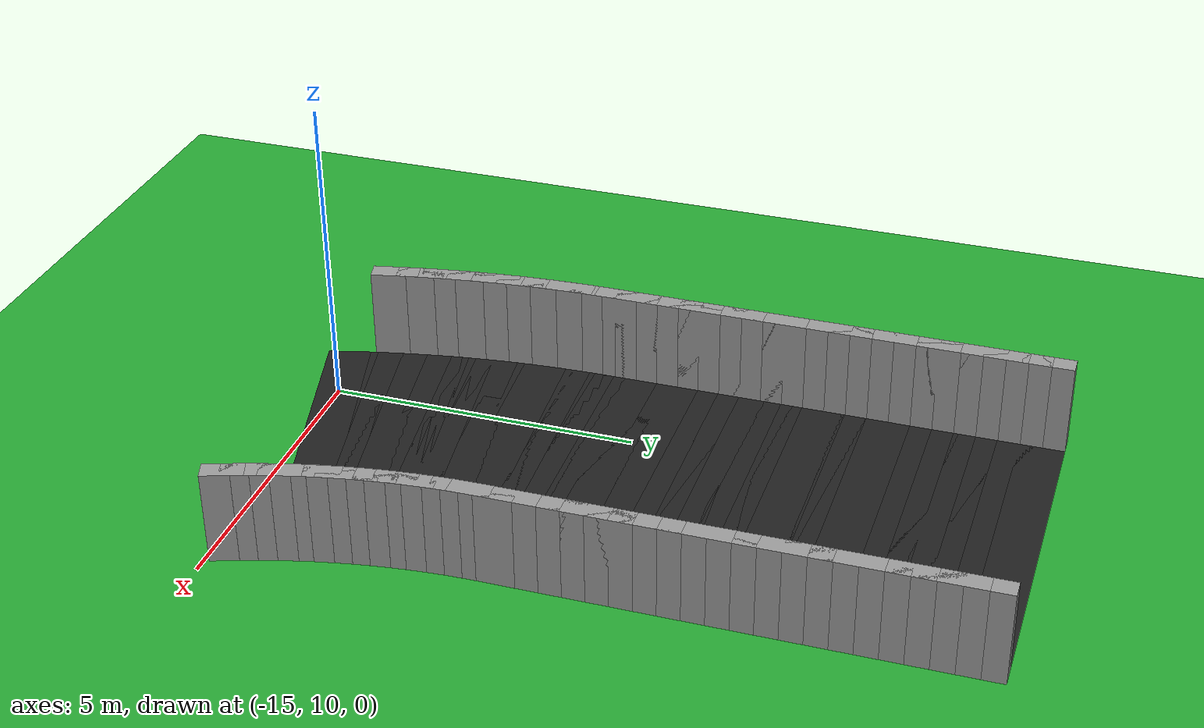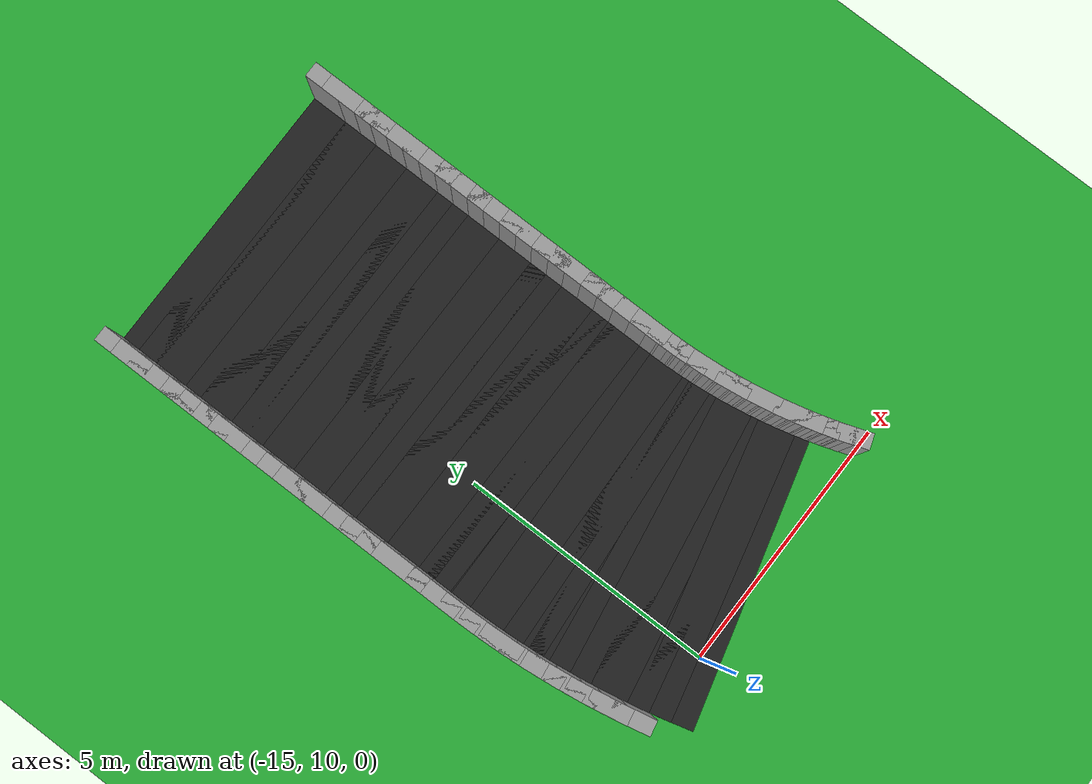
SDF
<sdf version="1.6">
 <world name="loop_speedloop">
  <include><uri>model://sun</uri></include>
  <model name="ground_plane">
   <static>true</static>
   <link name="link">
    <collision name="collision">
     <surface><friction><ode><mu>100</mu><mu2>50</mu2></ode></friction></surface>
     <geometry><plane><normal>0 0 1</normal><size>120 120</size></plane></geometry>
    </collision>
    <visual name="visual">
     <geometry><plane><normal>0 0 1</normal><size>120 120</size></plane></geometry>
     <material>
      <script><uri>file://media/materials/scripts/gazebo.material</uri><name>Gazebo/Green</name></script>
     </material>
    </visual>
   </link>
  </model>
  <model name="asphalt_436">
   <static>true</static>
   <pose>-14.000 21.193 0.005 0 0 -1.57080</pose>
   <link name="link">
    <visual name="visual">
     <geometry><box><size>0.711 5.500 0.010</size></box></geometry>
     <material>
      <script><uri>file://media/materials/scripts/gazebo.material</uri><name>Gazebo/Black</name></script>
     </material>
    </visual>
   </link>
  </model>
  <model name="curbL_436">
   <static>true</static>
   <pose>-11.100 21.193 0.750 0 0 -1.57080</pose>
   <link name="link">
    <collision name="collision"><geometry><box><size>0.711 0.300 1.500</size></box></geometry></collision>
    <visual name="visual">
     <geometry><box><size>0.711 0.300 1.500</size></box></geometry>
     <material>
      <script><uri>file://media/materials/scripts/gazebo.material</uri><name>Gazebo/Grey</name></script>
     </material>
    </visual>
   </link>
  </model>
  <model name="curbR_436">
   <static>true</static>
   <pose>-16.900 21.193 0.750 0 0 -1.57080</pose>
   <link name="link">
    <collision name="collision"><geometry><box><size>0.711 0.300 1.500</size></box></geometry></collision>
    <visual name="visual">
     <geometry><box><size>0.711 0.300 1.500</size></box></geometry>
     <material>
      <script><uri>file://media/materials/scripts/gazebo.material</uri><name>Gazebo/Grey</name></script>
     </material>
    </visual>
   </link>
  </model>
  <model name="asphalt_437">
   <static>true</static>
   <pose>-14.000 20.842 0.005 0 0 -1.57080</pose>
   <link name="link">
    <visual name="visual">
     <geometry><box><size>0.711 5.500 0.010</size></box></geometry>
     <material>
      <script><uri>file://media/materials/scripts/gazebo.material</uri><name>Gazebo/Black</name></script>
     </material>
    </visual>
   </link>
  </model>
  <model name="curbL_437">
   <static>true</static>
   <pose>-11.100 20.842 0.750 0 0 -1.57080</pose>
   <link name="link">
    <collision name="collision"><geometry><box><size>0.711 0.300 1.500</size></box></geometry></collision>
    <visual name="visual">
     <geometry><box><size>0.711 0.300 1.500</size></box></geometry>
     <material>
      <script><uri>file://media/materials/scripts/gazebo.material</uri><name>Gazebo/Grey</name></script>
     </material>
    </visual>
   </link>
  </model>
  <model name="curbR_437">
   <static>true</static>
   <pose>-16.900 20.842 0.750 0 0 -1.57080</pose>
   <link name="link">
    <collision name="collision"><geometry><box><size>0.711 0.300 1.500</size></box></geometry></collision>
    <visual name="visual">
     <geometry><box><size>0.711 0.300 1.500</size></box></geometry>
     <material>
      <script><uri>file://media/materials/scripts/gazebo.material</uri><name>Gazebo/Grey</name></script>
     </material>
    </visual>
   </link>
  </model>
  <model name="asphalt_438">
   <static>true</static>
   <pose>-14.000 20.492 0.005 0 0 -1.57080</pose>
   <link name="link">
    <visual name="visual">
     <geometry><box><size>0.711 5.500 0.010</size></box></geometry>
     <material>
      <script><uri>file://media/materials/scripts/gazebo.material</uri><name>Gazebo/Black</name></script>
     </material>
    </visual>
   </link>
  </model>
  <model name="curbL_438">
   <static>true</static>
   <pose>-11.100 20.492 0.750 0 0 -1.57080</pose>
   <link name="link">
    <collision name="collision"><geometry><box><size>0.711 0.300 1.500</size></box></geometry></collision>
    <visual name="visual">
     <geometry><box><size>0.711 0.300 1.500</size></box></geometry>
     <material>
      <script><uri>file://media/materials/scripts/gazebo.material</uri><name>Gazebo/Grey</name></script>
     </material>
    </visual>
   </link>
  </model>
  <model name="curbR_438">
   <static>true</static>
   <pose>-16.900 20.492 0.750 0 0 -1.57080</pose>
   <link name="link">
    <collision name="collision"><geometry><box><size>0.711 0.300 1.500</size></box></geometry></collision>
    <visual name="visual">
     <geometry><box><size>0.711 0.300 1.500</size></box></geometry>
     <material>
      <script><uri>file://media/materials/scripts/gazebo.material</uri><name>Gazebo/Grey</name></script>
     </material>
    </visual>
   </link>
  </model>
  <model name="asphalt_439">
   <static>true</static>
   <pose>-14.000 20.141 0.005 0 0 -1.57080</pose>
   <link name="link">
    <visual name="visual">
     <geometry><box><size>0.711 5.500 0.010</size></box></geometry>
     <material>
      <script><uri>file://media/materials/scripts/gazebo.material</uri><name>Gazebo/Black</name></script>
     </material>
    </visual>
   </link>
  </model>
  <model name="curbL_439">
   <static>true</static>
   <pose>-11.100 20.141 0.750 0 0 -1.57080</pose>
   <link name="link">
    <collision name="collision"><geometry><box><size>0.711 0.300 1.500</size></box></geometry></collision>
    <visual name="visual">
     <geometry><box><size>0.711 0.300 1.500</size></box></geometry>
     <material>
      <script><uri>file://media/materials/scripts/gazebo.material</uri><name>Gazebo/Grey</name></script>
     </material>
    </visual>
   </link>
  </model>
  <model name="curbR_439">
   <static>true</static>
   <pose>-16.900 20.141 0.750 0 0 -1.57080</pose>
   <link name="link">
    <collision name="collision"><geometry><box><size>0.711 0.300 1.500</size></box></geometry></collision>
    <visual name="visual">
     <geometry><box><size>0.711 0.300 1.500</size></box></geometry>
     <material>
      <script><uri>file://media/materials/scripts/gazebo.material</uri><name>Gazebo/Grey</name></script>
     </material>
    </visual>
   </link>
  </model>
  <model name="asphalt_440">
   <static>true</static>
   <pose>-14.000 19.790 0.005 0 0 -1.57080</pose>
   <link name="link">
    <visual name="visual">
     <geometry><box><size>0.711 5.500 0.010</size></box></geometry>
     <material>
      <script><uri>file://media/materials/scripts/gazebo.material</uri><name>Gazebo/Black</name></script>
     </material>
    </visual>
   </link>
  </model>
  <model name="curbL_440">
   <static>true</static>
   <pose>-11.100 19.790 0.750 0 0 -1.57080</pose>
   <link name="link">
    <collision name="collision"><geometry><box><size>0.711 0.300 1.500</size></box></geometry></collision>
    <visual name="visual">
     <geometry><box><size>0.711 0.300 1.500</size></box></geometry>
     <material>
      <script><uri>file://media/materials/scripts/gazebo.material</uri><name>Gazebo/Grey</name></script>
     </material>
    </visual>
   </link>
  </model>
  <model name="curbR_440">
   <static>true</static>
   <pose>-16.900 19.790 0.750 0 0 -1.57080</pose>
   <link name="link">
    <collision name="collision"><geometry><box><size>0.711 0.300 1.500</size></box></geometry></collision>
    <visual name="visual">
     <geometry><box><size>0.711 0.300 1.500</size></box></geometry>
     <material>
      <script><uri>file://media/materials/scripts/gazebo.material</uri><name>Gazebo/Grey</name></script>
     </material>
    </visual>
   </link>
  </model>
  <model name="asphalt_441">
   <static>true</static>
   <pose>-14.000 19.439 0.005 0 0 -1.57080</pose>
   <link name="link">
    <visual name="visual">
     <geometry><box><size>0.711 5.500 0.010</size></box></geometry>
     <material>
      <script><uri>file://media/materials/scripts/gazebo.material</uri><name>Gazebo/Black</name></script>
     </material>
    </visual>
   </link>
  </model>
  <model name="curbL_441">
   <static>true</static>
   <pose>-11.100 19.439 0.750 0 0 -1.57080</pose>
   <link name="link">
    <collision name="collision"><geometry><box><size>0.711 0.300 1.500</size></box></geometry></collision>
    <visual name="visual">
     <geometry><box><size>0.711 0.300 1.500</size></box></geometry>
     <material>
      <script><uri>file://media/materials/scripts/gazebo.material</uri><name>Gazebo/Grey</name></script>
     </material>
    </visual>
   </link>
  </model>
  <model name="curbR_441">
   <static>true</static>
   <pose>-16.900 19.439 0.750 0 0 -1.57080</pose>
   <link name="link">
    <collision name="collision"><geometry><box><size>0.711 0.300 1.500</size></box></geometry></collision>
    <visual name="visual">
     <geometry><box><size>0.711 0.300 1.500</size></box></geometry>
     <material>
      <script><uri>file://media/materials/scripts/gazebo.material</uri><name>Gazebo/Grey</name></script>
     </material>
    </visual>
   </link>
  </model>
  <model name="asphalt_442">
   <static>true</static>
   <pose>-14.000 19.088 0.005 0 0 -1.57080</pose>
   <link name="link">
    <visual name="visual">
     <geometry><box><size>0.711 5.500 0.010</size></box></geometry>
     <material>
      <script><uri>file://media/materials/scripts/gazebo.material</uri><name>Gazebo/Black</name></script>
     </material>
    </visual>
   </link>
  </model>
  <model name="curbL_442">
   <static>true</static>
   <pose>-11.100 19.088 0.750 0 0 -1.57080</pose>
   <link name="link">
    <collision name="collision"><geometry><box><size>0.711 0.300 1.500</size></box></geometry></collision>
    <visual name="visual">
     <geometry><box><size>0.711 0.300 1.500</size></box></geometry>
     <material>
      <script><uri>file://media/materials/scripts/gazebo.material</uri><name>Gazebo/Grey</name></script>
     </material>
    </visual>
   </link>
  </model>
  <model name="curbR_442">
   <static>true</static>
   <pose>-16.900 19.088 0.750 0 0 -1.57080</pose>
   <link name="link">
    <collision name="collision"><geometry><box><size>0.711 0.300 1.500</size></box></geometry></collision>
    <visual name="visual">
     <geometry><box><size>0.711 0.300 1.500</size></box></geometry>
     <material>
      <script><uri>file://media/materials/scripts/gazebo.material</uri><name>Gazebo/Grey</name></script>
     </material>
    </visual>
   </link>
  </model>
  <model name="asphalt_443">
   <static>true</static>
   <pose>-14.000 18.737 0.005 0 0 -1.57080</pose>
   <link name="link">
    <visual name="visual">
     <geometry><box><size>0.711 5.500 0.010</size></box></geometry>
     <material>
      <script><uri>file://media/materials/scripts/gazebo.material</uri><name>Gazebo/Black</name></script>
     </material>
    </visual>
   </link>
  </model>
  <model name="curbL_443">
   <static>true</static>
   <pose>-11.100 18.737 0.750 0 0 -1.57080</pose>
   <link name="link">
    <collision name="collision"><geometry><box><size>0.711 0.300 1.500</size></box></geometry></collision>
    <visual name="visual">
     <geometry><box><size>0.711 0.300 1.500</size></box></geometry>
     <material>
      <script><uri>file://media/materials/scripts/gazebo.material</uri><name>Gazebo/Grey</name></script>
     </material>
    </visual>
   </link>
  </model>
  <model name="curbR_443">
   <static>true</static>
   <pose>-16.900 18.737 0.750 0 0 -1.57080</pose>
   <link name="link">
    <collision name="collision"><geometry><box><size>0.711 0.300 1.500</size></box></geometry></collision>
    <visual name="visual">
     <geometry><box><size>0.711 0.300 1.500</size></box></geometry>
     <material>
      <script><uri>file://media/materials/scripts/gazebo.material</uri><name>Gazebo/Grey</name></script>
     </material>
    </visual>
   </link>
  </model>
  <model name="asphalt_444">
   <static>true</static>
   <pose>-14.000 18.386 0.005 0 0 -1.57080</pose>
   <link name="link">
    <visual name="visual">
     <geometry><box><size>0.711 5.500 0.010</size></box></geometry>
     <material>
      <script><uri>file://media/materials/scripts/gazebo.material</uri><name>Gazebo/Black</name></script>
     </material>
    </visual>
   </link>
  </model>
  <model name="curbL_444">
   <static>true</static>
   <pose>-11.100 18.386 0.750 0 0 -1.57080</pose>
   <link name="link">
    <collision name="collision"><geometry><box><size>0.711 0.300 1.500</size></box></geometry></collision>
    <visual name="visual">
     <geometry><box><size>0.711 0.300 1.500</size></box></geometry>
     <material>
      <script><uri>file://media/materials/scripts/gazebo.material</uri><name>Gazebo/Grey</name></script>
     </material>
    </visual>
   </link>
  </model>
  <model name="curbR_444">
   <static>true</static>
   <pose>-16.900 18.386 0.750 0 0 -1.57080</pose>
   <link name="link">
    <collision name="collision"><geometry><box><size>0.711 0.300 1.500</size></box></geometry></collision>
    <visual name="visual">
     <geometry><box><size>0.711 0.300 1.500</size></box></geometry>
     <material>
      <script><uri>file://media/materials/scripts/gazebo.material</uri><name>Gazebo/Grey</name></script>
     </material>
    </visual>
   </link>
  </model>
  <model name="asphalt_445">
   <static>true</static>
   <pose>-14.000 18.035 0.005 0 0 -1.57080</pose>
   <link name="link">
    <visual name="visual">
     <geometry><box><size>0.711 5.500 0.010</size></box></geometry>
     <material>
      <script><uri>file://media/materials/scripts/gazebo.material</uri><name>Gazebo/Black</name></script>
     </material>
    </visual>
   </link>
  </model>
  <model name="curbL_445">
   <static>true</static>
   <pose>-11.100 18.035 0.750 0 0 -1.57080</pose>
   <link name="link">
    <collision name="collision"><geometry><box><size>0.711 0.300 1.500</size></box></geometry></collision>
    <visual name="visual">
     <geometry><box><size>0.711 0.300 1.500</size></box></geometry>
     <material>
      <script><uri>file://media/materials/scripts/gazebo.material</uri><name>Gazebo/Grey</name></script>
     </material>
    </visual>
   </link>
  </model>
  <model name="curbR_445">
   <static>true</static>
   <pose>-16.900 18.035 0.750 0 0 -1.57080</pose>
   <link name="link">
    <collision name="collision"><geometry><box><size>0.711 0.300 1.500</size></box></geometry></collision>
    <visual name="visual">
     <geometry><box><size>0.711 0.300 1.500</size></box></geometry>
     <material>
      <script><uri>file://media/materials/scripts/gazebo.material</uri><name>Gazebo/Grey</name></script>
     </material>
    </visual>
   </link>
  </model>
  <model name="asphalt_446">
   <static>true</static>
   <pose>-14.000 17.685 0.005 0 0 -1.57080</pose>
   <link name="link">
    <visual name="visual">
     <geometry><box><size>0.711 5.500 0.010</size></box></geometry>
     <material>
      <script><uri>file://media/materials/scripts/gazebo.material</uri><name>Gazebo/Black</name></script>
     </material>
    </visual>
   </link>
  </model>
  <model name="curbL_446">
   <static>true</static>
   <pose>-11.100 17.685 0.750 0 0 -1.57080</pose>
   <link name="link">
    <collision name="collision"><geometry><box><size>0.711 0.300 1.500</size></box></geometry></collision>
    <visual name="visual">
     <geometry><box><size>0.711 0.300 1.500</size></box></geometry>
     <material>
      <script><uri>file://media/materials/scripts/gazebo.material</uri><name>Gazebo/Grey</name></script>
     </material>
    </visual>
   </link>
  </model>
  <model name="curbR_446">
   <static>true</static>
   <pose>-16.900 17.685 0.750 0 0 -1.57080</pose>
   <link name="link">
    <collision name="collision"><geometry><box><size>0.711 0.300 1.500</size></box></geometry></collision>
    <visual name="visual">
     <geometry><box><size>0.711 0.300 1.500</size></box></geometry>
     <material>
      <script><uri>file://media/materials/scripts/gazebo.material</uri><name>Gazebo/Grey</name></script>
     </material>
    </visual>
   </link>
  </model>
  <model name="asphalt_447">
   <static>true</static>
   <pose>-14.000 17.334 0.005 0 0 -1.57080</pose>
   <link name="link">
    <visual name="visual">
     <geometry><box><size>0.711 5.500 0.010</size></box></geometry>
     <material>
      <script><uri>file://media/materials/scripts/gazebo.material</uri><name>Gazebo/Black</name></script>
     </material>
    </visual>
   </link>
  </model>
  <model name="curbL_447">
   <static>true</static>
   <pose>-11.100 17.334 0.750 0 0 -1.57080</pose>
   <link name="link">
    <collision name="collision"><geometry><box><size>0.711 0.300 1.500</size></box></geometry></collision>
    <visual name="visual">
     <geometry><box><size>0.711 0.300 1.500</size></box></geometry>
     <material>
      <script><uri>file://media/materials/scripts/gazebo.material</uri><name>Gazebo/Grey</name></script>
     </material>
    </visual>
   </link>
  </model>
  <model name="curbR_447">
   <static>true</static>
   <pose>-16.900 17.334 0.750 0 0 -1.57080</pose>
   <link name="link">
    <collision name="collision"><geometry><box><size>0.711 0.300 1.500</size></box></geometry></collision>
    <visual name="visual">
     <geometry><box><size>0.711 0.300 1.500</size></box></geometry>
     <material>
      <script><uri>file://media/materials/scripts/gazebo.material</uri><name>Gazebo/Grey</name></script>
     </material>
    </visual>
   </link>
  </model>
  <model name="asphalt_448">
   <static>true</static>
   <pose>-14.000 16.983 0.005 0 0 -1.57080</pose>
   <link name="link">
    <visual name="visual">
     <geometry><box><size>0.711 5.500 0.010</size></box></geometry>
     <material>
      <script><uri>file://media/materials/scripts/gazebo.material</uri><name>Gazebo/Black</name></script>
     </material>
    </visual>
   </link>
  </model>
  <model name="curbL_448">
   <static>true</static>
   <pose>-11.100 16.983 0.750 0 0 -1.57080</pose>
   <link name="link">
    <collision name="collision"><geometry><box><size>0.711 0.300 1.500</size></box></geometry></collision>
    <visual name="visual">
     <geometry><box><size>0.711 0.300 1.500</size></box></geometry>
     <material>
      <script><uri>file://media/materials/scripts/gazebo.material</uri><name>Gazebo/Grey</name></script>
     </material>
    </visual>
   </link>
  </model>
  <model name="curbR_448">
   <static>true</static>
   <pose>-16.900 16.983 0.750 0 0 -1.57080</pose>
   <link name="link">
    <collision name="collision"><geometry><box><size>0.711 0.300 1.500</size></box></geometry></collision>
    <visual name="visual">
     <geometry><box><size>0.711 0.300 1.500</size></box></geometry>
     <material>
      <script><uri>file://media/materials/scripts/gazebo.material</uri><name>Gazebo/Grey</name></script>
     </material>
    </visual>
   </link>
  </model>
  <model name="asphalt_449">
   <static>true</static>
   <pose>-14.000 16.632 0.005 0 0 -1.57080</pose>
   <link name="link">
    <visual name="visual">
     <geometry><box><size>0.711 5.500 0.010</size></box></geometry>
     <material>
      <script><uri>file://media/materials/scripts/gazebo.material</uri><name>Gazebo/Black</name></script>
     </material>
    </visual>
   </link>
  </model>
  <model name="curbL_449">
   <static>true</static>
   <pose>-11.100 16.632 0.750 0 0 -1.57080</pose>
   <link name="link">
    <collision name="collision"><geometry><box><size>0.711 0.300 1.500</size></box></geometry></collision>
    <visual name="visual">
     <geometry><box><size>0.711 0.300 1.500</size></box></geometry>
     <material>
      <script><uri>file://media/materials/scripts/gazebo.material</uri><name>Gazebo/Grey</name></script>
     </material>
    </visual>
   </link>
  </model>
  <model name="curbR_449">
   <static>true</static>
   <pose>-16.900 16.632 0.750 0 0 -1.57080</pose>
   <link name="link">
    <collision name="collision"><geometry><box><size>0.711 0.300 1.500</size></box></geometry></collision>
    <visual name="visual">
     <geometry><box><size>0.711 0.300 1.500</size></box></geometry>
     <material>
      <script><uri>file://media/materials/scripts/gazebo.material</uri><name>Gazebo/Grey</name></script>
     </material>
    </visual>
   </link>
  </model>
  <model name="asphalt_450">
   <static>true</static>
   <pose>-14.000 16.281 0.005 0 0 -1.57080</pose>
   <link name="link">
    <visual name="visual">
     <geometry><box><size>0.711 5.500 0.010</size></box></geometry>
     <material>
      <script><uri>file://media/materials/scripts/gazebo.material</uri><name>Gazebo/Black</name></script>
     </material>
    </visual>
   </link>
  </model>
  <model name="curbL_450">
   <static>true</static>
   <pose>-11.100 16.281 0.750 0 0 -1.57080</pose>
   <link name="link">
    <collision name="collision"><geometry><box><size>0.711 0.300 1.500</size></box></geometry></collision>
    <visual name="visual">
     <geometry><box><size>0.711 0.300 1.500</size></box></geometry>
     <material>
      <script><uri>file://media/materials/scripts/gazebo.material</uri><name>Gazebo/Grey</name></script>
     </material>
    </visual>
   </link>
  </model>
  <model name="curbR_450">
   <static>true</static>
   <pose>-16.900 16.281 0.750 0 0 -1.57080</pose>
   <link name="link">
    <collision name="collision"><geometry><box><size>0.711 0.300 1.500</size></box></geometry></collision>
    <visual name="visual">
     <geometry><box><size>0.711 0.300 1.500</size></box></geometry>
     <material>
      <script><uri>file://media/materials/scripts/gazebo.material</uri><name>Gazebo/Grey</name></script>
     </material>
    </visual>
   </link>
  </model>
  <model name="asphalt_451">
   <static>true</static>
   <pose>-14.000 15.930 0.005 0 0 -1.57080</pose>
   <link name="link">
    <visual name="visual">
     <geometry><box><size>0.711 5.500 0.010</size></box></geometry>
     <material>
      <script><uri>file://media/materials/scripts/gazebo.material</uri><name>Gazebo/Black</name></script>
     </material>
    </visual>
   </link>
  </model>
  <model name="curbL_451">
   <static>true</static>
   <pose>-11.100 15.930 0.750 0 0 -1.57080</pose>
   <link name="link">
    <collision name="collision"><geometry><box><size>0.711 0.300 1.500</size></box></geometry></collision>
    <visual name="visual">
     <geometry><box><size>0.711 0.300 1.500</size></box></geometry>
     <material>
      <script><uri>file://media/materials/scripts/gazebo.material</uri><name>Gazebo/Grey</name></script>
     </material>
    </visual>
   </link>
  </model>
  <model name="curbR_451">
   <static>true</static>
   <pose>-16.900 15.930 0.750 0 0 -1.57080</pose>
   <link name="link">
    <collision name="collision"><geometry><box><size>0.711 0.300 1.500</size></box></geometry></collision>
    <visual name="visual">
     <geometry><box><size>0.711 0.300 1.500</size></box></geometry>
     <material>
      <script><uri>file://media/materials/scripts/gazebo.material</uri><name>Gazebo/Grey</name></script>
     </material>
    </visual>
   </link>
  </model>
  <model name="asphalt_452">
   <static>true</static>
   <pose>-14.000 15.579 0.005 0 0 -1.57080</pose>
   <link name="link">
    <visual name="visual">
     <geometry><box><size>0.711 5.500 0.010</size></box></geometry>
     <material>
      <script><uri>file://media/materials/scripts/gazebo.material</uri><name>Gazebo/Black</name></script>
     </material>
    </visual>
   </link>
  </model>
  <model name="curbL_452">
   <static>true</static>
   <pose>-11.100 15.579 0.750 0 0 -1.57080</pose>
   <link name="link">
    <collision name="collision"><geometry><box><size>0.711 0.300 1.500</size></box></geometry></collision>
    <visual name="visual">
     <geometry><box><size>0.711 0.300 1.500</size></box></geometry>
     <material>
      <script><uri>file://media/materials/scripts/gazebo.material</uri><name>Gazebo/Grey</name></script>
     </material>
    </visual>
   </link>
  </model>
  <model name="curbR_452">
   <static>true</static>
   <pose>-16.900 15.579 0.750 0 0 -1.57080</pose>
   <link name="link">
    <collision name="collision"><geometry><box><size>0.711 0.300 1.500</size></box></geometry></collision>
    <visual name="visual">
     <geometry><box><size>0.711 0.300 1.500</size></box></geometry>
     <material>
      <script><uri>file://media/materials/scripts/gazebo.material</uri><name>Gazebo/Grey</name></script>
     </material>
    </visual>
   </link>
  </model>
  <model name="asphalt_453">
   <static>true</static>
   <pose>-14.000 15.228 0.005 0 0 -1.57080</pose>
   <link name="link">
    <visual name="visual">
     <geometry><box><size>0.711 5.500 0.010</size></box></geometry>
     <material>
      <script><uri>file://media/materials/scripts/gazebo.material</uri><name>Gazebo/Black</name></script>
     </material>
    </visual>
   </link>
  </model>
  <model name="curbL_453">
   <static>true</static>
   <pose>-11.100 15.228 0.750 0 0 -1.57080</pose>
   <link name="link">
    <collision name="collision"><geometry><box><size>0.711 0.300 1.500</size></box></geometry></collision>
    <visual name="visual">
     <geometry><box><size>0.711 0.300 1.500</size></box></geometry>
     <material>
      <script><uri>file://media/materials/scripts/gazebo.material</uri><name>Gazebo/Grey</name></script>
     </material>
    </visual>
   </link>
  </model>
  <model name="curbR_453">
   <static>true</static>
   <pose>-16.900 15.228 0.750 0 0 -1.57080</pose>
   <link name="link">
    <collision name="collision"><geometry><box><size>0.711 0.300 1.500</size></box></geometry></collision>
    <visual name="visual">
     <geometry><box><size>0.711 0.300 1.500</size></box></geometry>
     <material>
      <script><uri>file://media/materials/scripts/gazebo.material</uri><name>Gazebo/Grey</name></script>
     </material>
    </visual>
   </link>
  </model>
  <model name="asphalt_454">
   <static>true</static>
   <pose>-14.000 14.878 0.005 0 0 -1.57080</pose>
   <link name="link">
    <visual name="visual">
     <geometry><box><size>0.711 5.500 0.010</size></box></geometry>
     <material>
      <script><uri>file://media/materials/scripts/gazebo.material</uri><name>Gazebo/Black</name></script>
     </material>
    </visual>
   </link>
  </model>
  <model name="curbL_454">
   <static>true</static>
   <pose>-11.100 14.878 0.750 0 0 -1.57080</pose>
   <link name="link">
    <collision name="collision"><geometry><box><size>0.711 0.300 1.500</size></box></geometry></collision>
    <visual name="visual">
     <geometry><box><size>0.711 0.300 1.500</size></box></geometry>
     <material>
      <script><uri>file://media/materials/scripts/gazebo.material</uri><name>Gazebo/Grey</name></script>
     </material>
    </visual>
   </link>
  </model>
  <model name="curbR_454">
   <static>true</static>
   <pose>-16.900 14.878 0.750 0 0 -1.57080</pose>
   <link name="link">
    <collision name="collision"><geometry><box><size>0.711 0.300 1.500</size></box></geometry></collision>
    <visual name="visual">
     <geometry><box><size>0.711 0.300 1.500</size></box></geometry>
     <material>
      <script><uri>file://media/materials/scripts/gazebo.material</uri><name>Gazebo/Grey</name></script>
     </material>
    </visual>
   </link>
  </model>
  <model name="asphalt_455">
   <static>true</static>
   <pose>-14.000 14.527 0.005 0 0 -1.57080</pose>
   <link name="link">
    <visual name="visual">
     <geometry><box><size>0.711 5.500 0.010</size></box></geometry>
     <material>
      <script><uri>file://media/materials/scripts/gazebo.material</uri><name>Gazebo/Black</name></script>
     </material>
    </visual>
   </link>
  </model>
  <model name="curbL_455">
   <static>true</static>
   <pose>-11.100 14.527 0.750 0 0 -1.57080</pose>
   <link name="link">
    <collision name="collision"><geometry><box><size>0.711 0.300 1.500</size></box></geometry></collision>
    <visual name="visual">
     <geometry><box><size>0.711 0.300 1.500</size></box></geometry>
     <material>
      <script><uri>file://media/materials/scripts/gazebo.material</uri><name>Gazebo/Grey</name></script>
     </material>
    </visual>
   </link>
  </model>
  <model name="curbR_455">
   <static>true</static>
   <pose>-16.900 14.527 0.750 0 0 -1.57080</pose>
   <link name="link">
    <collision name="collision"><geometry><box><size>0.711 0.300 1.500</size></box></geometry></collision>
    <visual name="visual">
     <geometry><box><size>0.711 0.300 1.500</size></box></geometry>
     <material>
      <script><uri>file://media/materials/scripts/gazebo.material</uri><name>Gazebo/Grey</name></script>
     </material>
    </visual>
   </link>
  </model>
  <model name="asphalt_456">
   <static>true</static>
   <pose>-14.000 14.176 0.005 0 0 -1.57080</pose>
   <link name="link">
    <visual name="visual">
     <geometry><box><size>0.711 5.500 0.010</size></box></geometry>
     <material>
      <script><uri>file://media/materials/scripts/gazebo.material</uri><name>Gazebo/Black</name></script>
     </material>
    </visual>
   </link>
  </model>
  <model name="curbL_456">
   <static>true</static>
   <pose>-11.100 14.176 0.750 0 0 -1.57080</pose>
   <link name="link">
    <collision name="collision"><geometry><box><size>0.711 0.300 1.500</size></box></geometry></collision>
    <visual name="visual">
     <geometry><box><size>0.711 0.300 1.500</size></box></geometry>
     <material>
      <script><uri>file://media/materials/scripts/gazebo.material</uri><name>Gazebo/Grey</name></script>
     </material>
    </visual>
   </link>
  </model>
  <model name="curbR_456">
   <static>true</static>
   <pose>-16.900 14.176 0.750 0 0 -1.57080</pose>
   <link name="link">
    <collision name="collision"><geometry><box><size>0.711 0.300 1.500</size></box></geometry></collision>
    <visual name="visual">
     <geometry><box><size>0.711 0.300 1.500</size></box></geometry>
     <material>
      <script><uri>file://media/materials/scripts/gazebo.material</uri><name>Gazebo/Grey</name></script>
     </material>
    </visual>
   </link>
  </model>
  <model name="asphalt_457">
   <static>true</static>
   <pose>-13.998 13.826 0.005 0 0 -1.55833</pose>
   <link name="link">
    <visual name="visual">
     <geometry><box><size>0.709 5.500 0.010</size></box></geometry>
     <material>
      <script><uri>file://media/materials/scripts/gazebo.material</uri><name>Gazebo/Black</name></script>
     </material>
    </visual>
   </link>
  </model>
  <model name="curbL_457">
   <static>true</static>
   <pose>-11.099 13.862 0.750 0 0 -1.55833</pose>
   <link name="link">
    <collision name="collision"><geometry><box><size>0.637 0.300 1.500</size></box></geometry></collision>
    <visual name="visual">
     <geometry><box><size>0.637 0.300 1.500</size></box></geometry>
     <material>
      <script><uri>file://media/materials/scripts/gazebo.material</uri><name>Gazebo/Grey</name></script>
     </material>
    </visual>
   </link>
  </model>
  <model name="curbR_457">
   <static>true</static>
   <pose>-16.898 13.790 0.750 0 0 -1.55833</pose>
   <link name="link">
    <collision name="collision"><geometry><box><size>0.781 0.300 1.500</size></box></geometry></collision>
    <visual name="visual">
     <geometry><box><size>0.781 0.300 1.500</size></box></geometry>
     <material>
      <script><uri>file://media/materials/scripts/gazebo.material</uri><name>Gazebo/Grey</name></script>
     </material>
    </visual>
   </link>
  </model>
  <model name="asphalt_458">
   <static>true</static>
   <pose>-13.989 13.477 0.005 0 0 -1.53340</pose>
   <link name="link">
    <visual name="visual">
     <geometry><box><size>0.709 5.500 0.010</size></box></geometry>
     <material>
      <script><uri>file://media/materials/scripts/gazebo.material</uri><name>Gazebo/Black</name></script>
     </material>
    </visual>
   </link>
  </model>
  <model name="curbL_458">
   <static>true</static>
   <pose>-11.092 13.585 0.750 0 0 -1.53340</pose>
   <link name="link">
    <collision name="collision"><geometry><box><size>0.637 0.300 1.500</size></box></geometry></collision>
    <visual name="visual">
     <geometry><box><size>0.637 0.300 1.500</size></box></geometry>
     <material>
      <script><uri>file://media/materials/scripts/gazebo.material</uri><name>Gazebo/Grey</name></script>
     </material>
    </visual>
   </link>
  </model>
  <model name="curbR_458">
   <static>true</static>
   <pose>-16.887 13.368 0.750 0 0 -1.53340</pose>
   <link name="link">
    <collision name="collision"><geometry><box><size>0.781 0.300 1.500</size></box></geometry></collision>
    <visual name="visual">
     <geometry><box><size>0.781 0.300 1.500</size></box></geometry>
     <material>
      <script><uri>file://media/materials/scripts/gazebo.material</uri><name>Gazebo/Grey</name></script>
     </material>
    </visual>
   </link>
  </model>
  <model name="asphalt_459">
   <static>true</static>
   <pose>-13.972 13.128 0.005 0 0 -1.50846</pose>
   <link name="link">
    <visual name="visual">
     <geometry><box><size>0.709 5.500 0.010</size></box></geometry>
     <material>
      <script><uri>file://media/materials/scripts/gazebo.material</uri><name>Gazebo/Black</name></script>
     </material>
    </visual>
   </link>
  </model>
  <model name="curbL_459">
   <static>true</static>
   <pose>-11.078 13.309 0.750 0 0 -1.50846</pose>
   <link name="link">
    <collision name="collision"><geometry><box><size>0.637 0.300 1.500</size></box></geometry></collision>
    <visual name="visual">
     <geometry><box><size>0.637 0.300 1.500</size></box></geometry>
     <material>
      <script><uri>file://media/materials/scripts/gazebo.material</uri><name>Gazebo/Grey</name></script>
     </material>
    </visual>
   </link>
  </model>
  <model name="curbR_459">
   <static>true</static>
   <pose>-16.866 12.948 0.750 0 0 -1.50846</pose>
   <link name="link">
    <collision name="collision"><geometry><box><size>0.781 0.300 1.500</size></box></geometry></collision>
    <visual name="visual">
     <geometry><box><size>0.781 0.300 1.500</size></box></geometry>
     <material>
      <script><uri>file://media/materials/scripts/gazebo.material</uri><name>Gazebo/Grey</name></script>
     </material>
    </visual>
   </link>
  </model>
  <model name="asphalt_460">
   <static>true</static>
   <pose>-13.946 12.780 0.005 0 0 -1.48353</pose>
   <link name="link">
    <visual name="visual">
     <geometry><box><size>0.709 5.500 0.010</size></box></geometry>
     <material>
      <script><uri>file://media/materials/scripts/gazebo.material</uri><name>Gazebo/Black</name></script>
     </material>
    </visual>
   </link>
  </model>
  <model name="curbL_460">
   <static>true</static>
   <pose>-11.057 13.033 0.750 0 0 -1.48353</pose>
   <link name="link">
    <collision name="collision"><geometry><box><size>0.637 0.300 1.500</size></box></geometry></collision>
    <visual name="visual">
     <geometry><box><size>0.637 0.300 1.500</size></box></geometry>
     <material>
      <script><uri>file://media/materials/scripts/gazebo.material</uri><name>Gazebo/Grey</name></script>
     </material>
    </visual>
   </link>
  </model>
  <model name="curbR_460">
   <static>true</static>
   <pose>-16.835 12.528 0.750 0 0 -1.48353</pose>
   <link name="link">
    <collision name="collision"><geometry><box><size>0.781 0.300 1.500</size></box></geometry></collision>
    <visual name="visual">
     <geometry><box><size>0.781 0.300 1.500</size></box></geometry>
     <material>
      <script><uri>file://media/materials/scripts/gazebo.material</uri><name>Gazebo/Grey</name></script>
     </material>
    </visual>
   </link>
  </model>
  <model name="asphalt_461">
   <static>true</static>
   <pose>-13.911 12.433 0.005 0 0 -1.45860</pose>
   <link name="link">
    <visual name="visual">
     <geometry><box><size>0.709 5.500 0.010</size></box></geometry>
     <material>
      <script><uri>file://media/materials/scripts/gazebo.material</uri><name>Gazebo/Black</name></script>
     </material>
    </visual>
   </link>
  </model>
  <model name="curbL_461">
   <static>true</static>
   <pose>-11.030 12.758 0.750 0 0 -1.45860</pose>
   <link name="link">
    <collision name="collision"><geometry><box><size>0.637 0.300 1.500</size></box></geometry></collision>
    <visual name="visual">
     <geometry><box><size>0.637 0.300 1.500</size></box></geometry>
     <material>
      <script><uri>file://media/materials/scripts/gazebo.material</uri><name>Gazebo/Grey</name></script>
     </material>
    </visual>
   </link>
  </model>
  <model name="curbR_461">
   <static>true</static>
   <pose>-16.793 12.108 0.750 0 0 -1.45860</pose>
   <link name="link">
    <collision name="collision"><geometry><box><size>0.781 0.300 1.500</size></box></geometry></collision>
    <visual name="visual">
     <geometry><box><size>0.781 0.300 1.500</size></box></geometry>
     <material>
      <script><uri>file://media/materials/scripts/gazebo.material</uri><name>Gazebo/Grey</name></script>
     </material>
    </visual>
   </link>
  </model>
  <model name="asphalt_462">
   <static>true</static>
   <pose>-13.868 12.087 0.005 0 0 -1.43366</pose>
   <link name="link">
    <visual name="visual">
     <geometry><box><size>0.709 5.500 0.010</size></box></geometry>
     <material>
      <script><uri>file://media/materials/scripts/gazebo.material</uri><name>Gazebo/Black</name></script>
     </material>
    </visual>
   </link>
  </model>
  <model name="curbL_462">
   <static>true</static>
   <pose>-10.995 12.483 0.750 0 0 -1.43366</pose>
   <link name="link">
    <collision name="collision"><geometry><box><size>0.637 0.300 1.500</size></box></geometry></collision>
    <visual name="visual">
     <geometry><box><size>0.637 0.300 1.500</size></box></geometry>
     <material>
      <script><uri>file://media/materials/scripts/gazebo.material</uri><name>Gazebo/Grey</name></script>
     </material>
    </visual>
   </link>
  </model>
  <model name="curbR_462">
   <static>true</static>
   <pose>-16.740 11.690 0.750 0 0 -1.43366</pose>
   <link name="link">
    <collision name="collision"><geometry><box><size>0.781 0.300 1.500</size></box></geometry></collision>
    <visual name="visual">
     <geometry><box><size>0.781 0.300 1.500</size></box></geometry>
     <material>
      <script><uri>file://media/materials/scripts/gazebo.material</uri><name>Gazebo/Grey</name></script>
     </material>
    </visual>
   </link>
  </model>
  <model name="asphalt_463">
   <static>true</static>
   <pose>-13.816 11.741 0.005 0 0 -1.40873</pose>
   <link name="link">
    <visual name="visual">
     <geometry><box><size>0.709 5.500 0.010</size></box></geometry>
     <material>
      <script><uri>file://media/materials/scripts/gazebo.material</uri><name>Gazebo/Black</name></script>
     </material>
    </visual>
   </link>
  </model>
  <model name="curbL_463">
   <static>true</static>
   <pose>-10.954 12.209 0.750 0 0 -1.40873</pose>
   <link name="link">
    <collision name="collision"><geometry><box><size>0.637 0.300 1.500</size></box></geometry></collision>
    <visual name="visual">
     <geometry><box><size>0.637 0.300 1.500</size></box></geometry>
     <material>
      <script><uri>file://media/materials/scripts/gazebo.material</uri><name>Gazebo/Grey</name></script>
     </material>
    </visual>
   </link>
  </model>
  <model name="curbR_463">
   <static>true</static>
   <pose>-16.678 11.274 0.750 0 0 -1.40873</pose>
   <link name="link">
    <collision name="collision"><geometry><box><size>0.781 0.300 1.500</size></box></geometry></collision>
    <visual name="visual">
     <geometry><box><size>0.781 0.300 1.500</size></box></geometry>
     <material>
      <script><uri>file://media/materials/scripts/gazebo.material</uri><name>Gazebo/Grey</name></script>
     </material>
    </visual>
   </link>
  </model>
  <model name="asphalt_464">
   <static>true</static>
   <pose>-13.755 11.398 0.005 0 0 -1.38380</pose>
   <link name="link">
    <visual name="visual">
     <geometry><box><size>0.709 5.500 0.010</size></box></geometry>
     <material>
      <script><uri>file://media/materials/scripts/gazebo.material</uri><name>Gazebo/Black</name></script>
     </material>
    </visual>
   </link>
  </model>
  <model name="curbL_464">
   <static>true</static>
   <pose>-10.906 11.937 0.750 0 0 -1.38380</pose>
   <link name="link">
    <collision name="collision"><geometry><box><size>0.637 0.300 1.500</size></box></geometry></collision>
    <visual name="visual">
     <geometry><box><size>0.637 0.300 1.500</size></box></geometry>
     <material>
      <script><uri>file://media/materials/scripts/gazebo.material</uri><name>Gazebo/Grey</name></script>
     </material>
    </visual>
   </link>
  </model>
  <model name="curbR_464">
   <static>true</static>
   <pose>-16.604 10.859 0.750 0 0 -1.38380</pose>
   <link name="link">
    <collision name="collision"><geometry><box><size>0.781 0.300 1.500</size></box></geometry></collision>
    <visual name="visual">
     <geometry><box><size>0.781 0.300 1.500</size></box></geometry>
     <material>
      <script><uri>file://media/materials/scripts/gazebo.material</uri><name>Gazebo/Grey</name></script>
     </material>
    </visual>
   </link>
  </model>
  <model name="asphalt_465">
   <static>true</static>
   <pose>-13.686 11.056 0.005 0 0 -1.35886</pose>
   <link name="link">
    <visual name="visual">
     <geometry><box><size>0.709 5.500 0.010</size></box></geometry>
     <material>
      <script><uri>file://media/materials/scripts/gazebo.material</uri><name>Gazebo/Black</name></script>
     </material>
    </visual>
   </link>
  </model>
  <model name="curbL_465">
   <static>true</static>
   <pose>-10.851 11.666 0.750 0 0 -1.35886</pose>
   <link name="link">
    <collision name="collision"><geometry><box><size>0.637 0.300 1.500</size></box></geometry></collision>
    <visual name="visual">
     <geometry><box><size>0.637 0.300 1.500</size></box></geometry>
     <material>
      <script><uri>file://media/materials/scripts/gazebo.material</uri><name>Gazebo/Grey</name></script>
     </material>
    </visual>
   </link>
  </model>
  <model name="curbR_465">
   <static>true</static>
   <pose>-16.521 10.446 0.750 0 0 -1.35886</pose>
   <link name="link">
    <collision name="collision"><geometry><box><size>0.781 0.300 1.500</size></box></geometry></collision>
    <visual name="visual">
     <geometry><box><size>0.781 0.300 1.500</size></box></geometry>
     <material>
      <script><uri>file://media/materials/scripts/gazebo.material</uri><name>Gazebo/Grey</name></script>
     </material>
    </visual>
   </link>
  </model>
  <model name="asphalt_466">
   <static>true</static>
   <pose>-13.608 10.715 0.005 0 0 -1.33393</pose>
   <link name="link">
    <visual name="visual">
     <geometry><box><size>0.709 5.500 0.010</size></box></geometry>
     <material>
      <script><uri>file://media/materials/scripts/gazebo.material</uri><name>Gazebo/Black</name></script>
     </material>
    </visual>
   </link>
  </model>
  <model name="curbL_466">
   <static>true</static>
   <pose>-10.790 11.396 0.750 0 0 -1.33393</pose>
   <link name="link">
    <collision name="collision"><geometry><box><size>0.637 0.300 1.500</size></box></geometry></collision>
    <visual name="visual">
     <geometry><box><size>0.637 0.300 1.500</size></box></geometry>
     <material>
      <script><uri>file://media/materials/scripts/gazebo.material</uri><name>Gazebo/Grey</name></script>
     </material>
    </visual>
   </link>
  </model>
  <model name="asphalt_467">
   <static>true</static>
   <pose>-13.522 10.377 0.005 0 0 -1.30900</pose>
   <link name="link">
    <visual name="visual">
     <geometry><box><size>0.709 5.500 0.010</size></box></geometry>
     <material>
      <script><uri>file://media/materials/scripts/gazebo.material</uri><name>Gazebo/Black</name></script>
     </material>
    </visual>
   </link>
  </model>
  <model name="curbL_467">
   <static>true</static>
   <pose>-10.721 11.128 0.750 0 0 -1.30900</pose>
   <link name="link">
    <collision name="collision"><geometry><box><size>0.637 0.300 1.500</size></box></geometry></collision>
    <visual name="visual">
     <geometry><box><size>0.637 0.300 1.500</size></box></geometry>
     <material>
      <script><uri>file://media/materials/scripts/gazebo.material</uri><name>Gazebo/Grey</name></script>
     </material>
    </visual>
   </link>
  </model>
  <model name="curbL_468">
   <static>true</static>
   <pose>-10.646 10.861 0.750 0 0 -1.28406</pose>
   <link name="link">
    <collision name="collision"><geometry><box><size>0.637 0.300 1.500</size></box></geometry></collision>
    <visual name="visual">
     <geometry><box><size>0.637 0.300 1.500</size></box></geometry>
     <material>
      <script><uri>file://media/materials/scripts/gazebo.material</uri><name>Gazebo/Grey</name></script>
     </material>
    </visual>
   </link>
  </model>
  <model name="curbL_469">
   <static>true</static>
   <pose>-10.565 10.597 0.750 0 0 -1.25913</pose>
   <link name="link">
    <collision name="collision"><geometry><box><size>0.637 0.300 1.500</size></box></geometry></collision>
    <visual name="visual">
     <geometry><box><size>0.637 0.300 1.500</size></box></geometry>
     <material>
      <script><uri>file://media/materials/scripts/gazebo.material</uri><name>Gazebo/Grey</name></script>
     </material>
    </visual>
   </link>
  </model>
  <model name="curbL_470">
   <static>true</static>
   <pose>-10.477 10.334 0.750 0 0 -1.23420</pose>
   <link name="link">
    <collision name="collision"><geometry><box><size>0.637 0.300 1.500</size></box></geometry></collision>
    <visual name="visual">
     <geometry><box><size>0.637 0.300 1.500</size></box></geometry>
     <material>
      <script><uri>file://media/materials/scripts/gazebo.material</uri><name>Gazebo/Grey</name></script>
     </material>
    </visual>
   </link>
  </model>
 </world>
</sdf>
